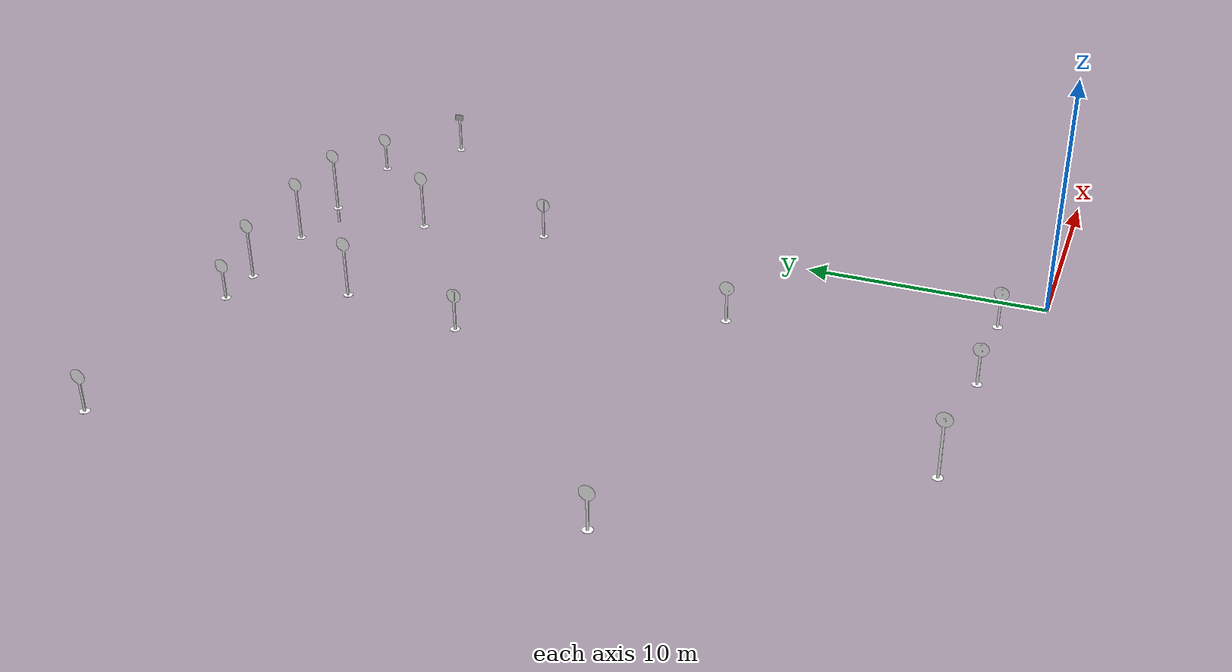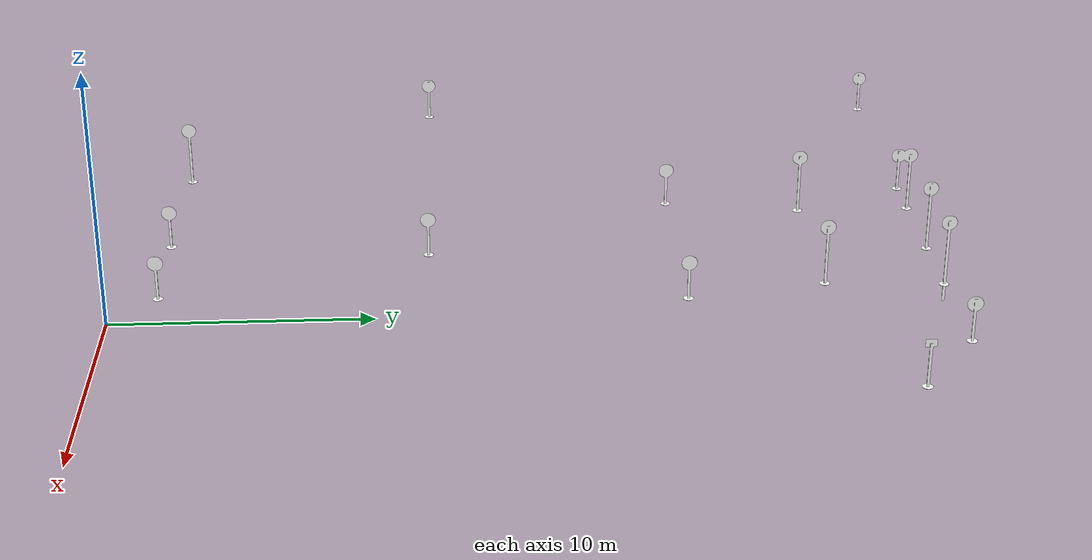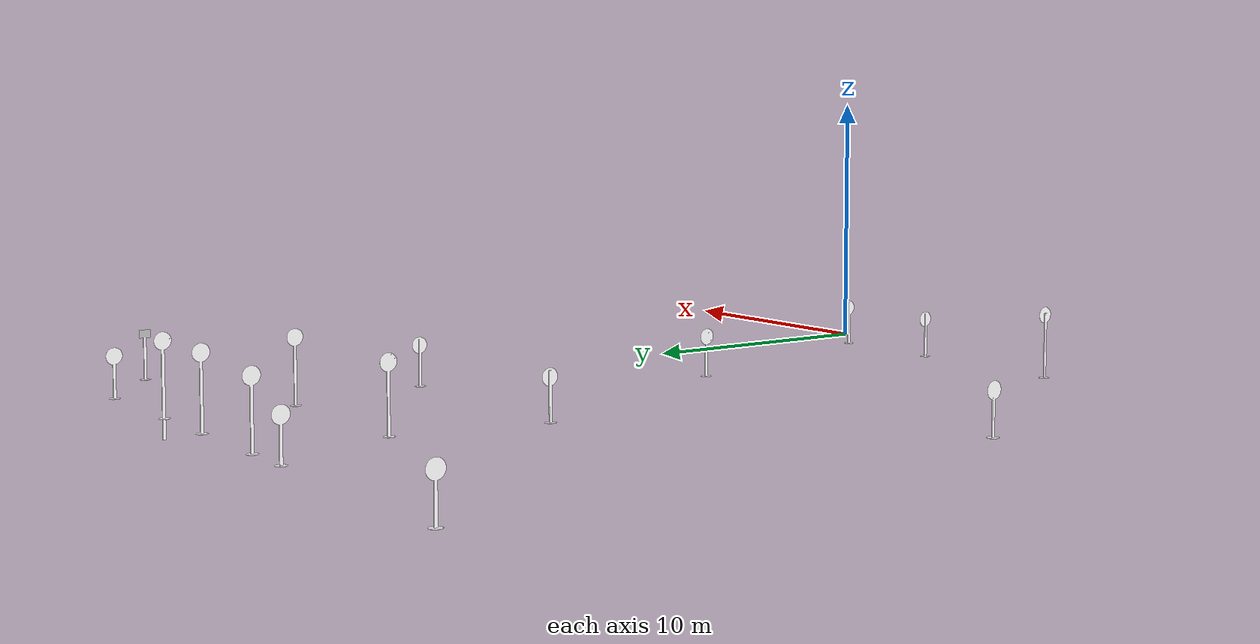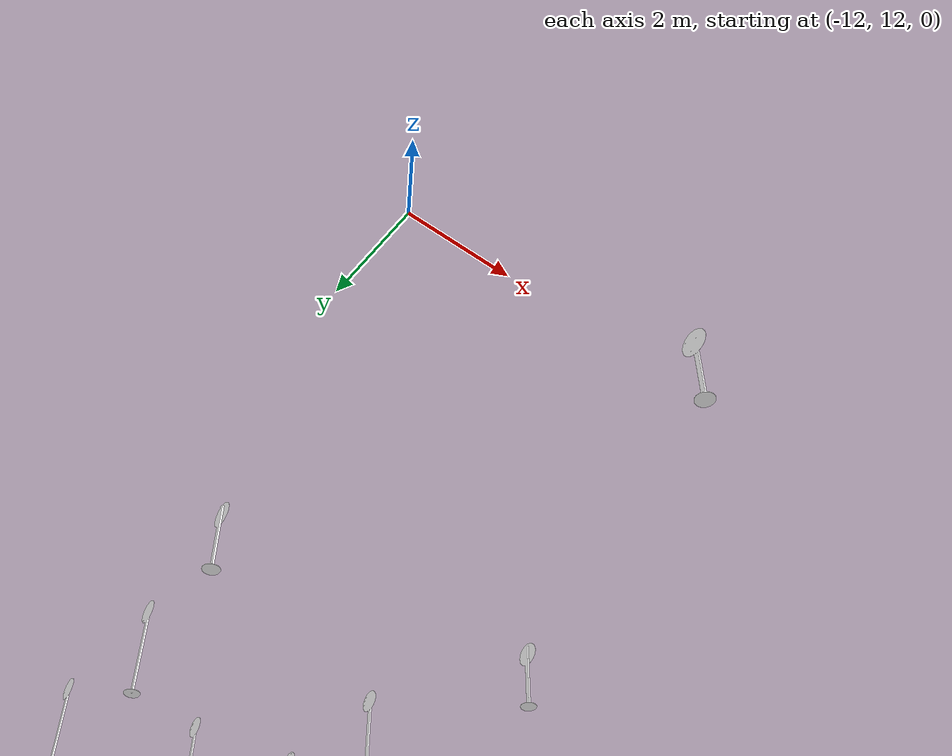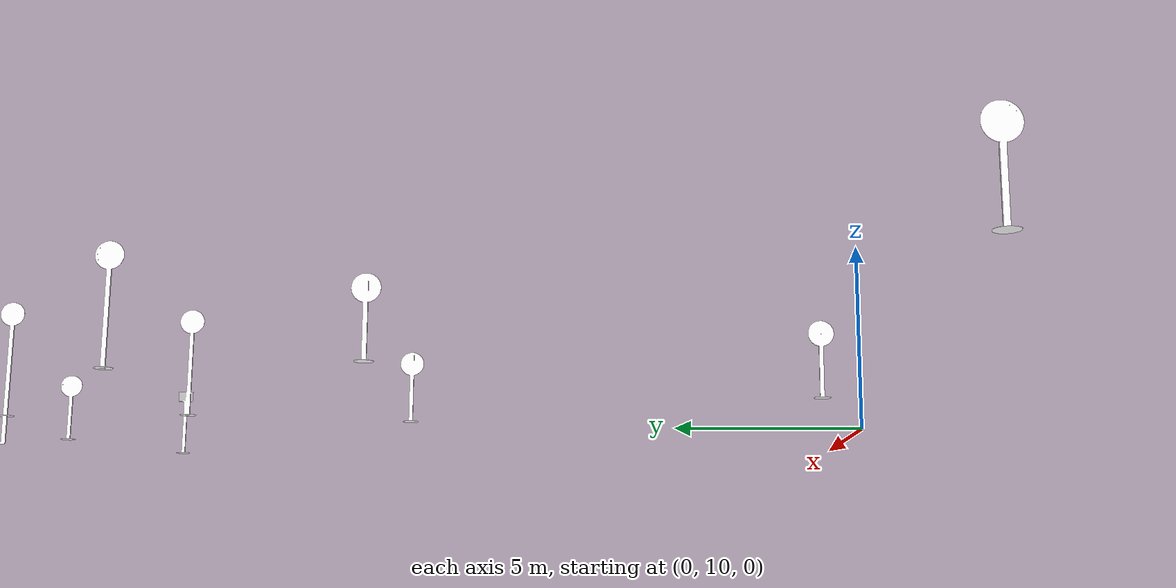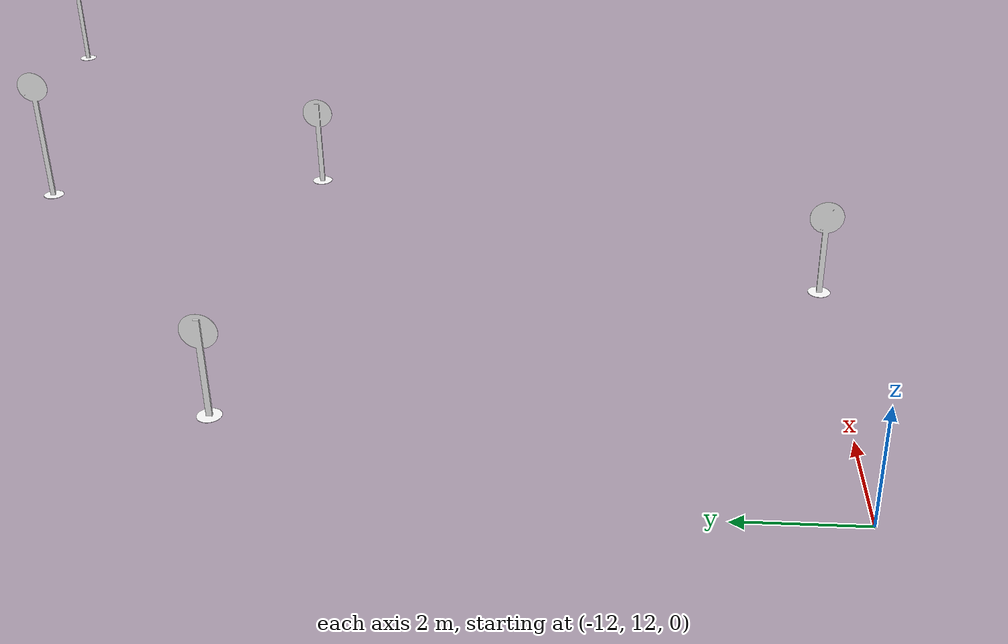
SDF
<?xml version="1.0" ?>
<sdf version="1.6">
  <model name="tabelalar">
    <static>true</static>
    <link name="tabelalar_link">
      <visual name="tabelalar_visual">
        <geometry>
          <mesh>
            <uri>model://tabelalar/meshes/tabelalar.dae</uri>
          </mesh>
        </geometry>
      </visual>
      <collision name="tabelalar_collision">
        <geometry>
          <mesh>
            <uri>model://tabelalar/meshes/tabelalar.dae</uri>
          </mesh>
        </geometry>
      </collision>
    </link>
  </model>
</sdf>
